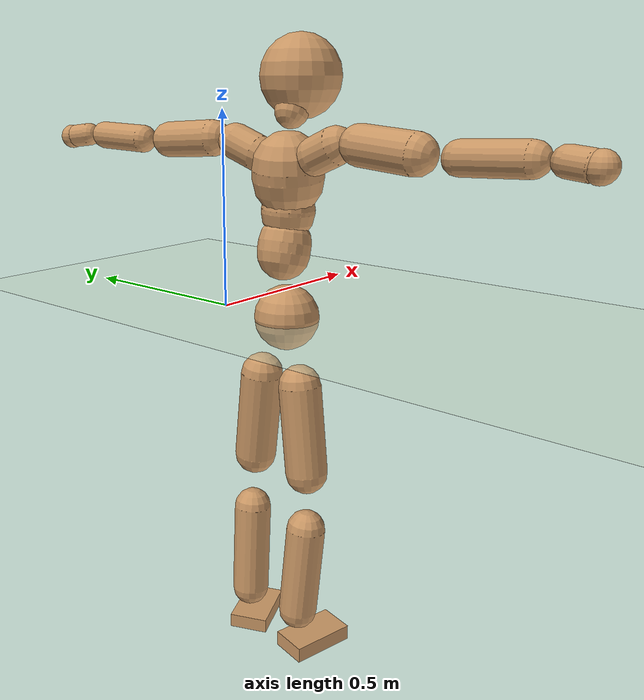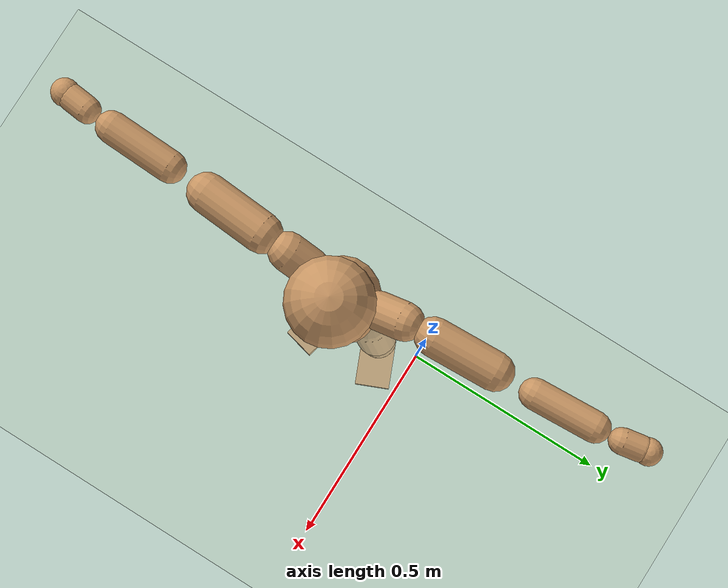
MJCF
<mujoco model="humanoid">
  <compiler coordinate="local" angle="radian"/>
  <default>
    <joint damping="0.0" armature="0.01" stiffness="0.0" limited="true"/>
    <geom conaffinity="1" condim="3" contype="7" margin="0.001" rgba="0.8 0.6 .4 1"/>
  </default>
  <asset>
    <texture type="skybox" builtin="gradient" rgb1=".4 .5 .6" rgb2="0 0 0" width="100" height="100"/>
    <texture builtin="flat" height="1278" mark="cross" markrgb="1 1 1" name="texgeom" random="0.01" rgb1="0.8 0.6 0.4" rgb2="0.8 0.6 0.4" type="cube" width="127"/>
    <texture builtin="checker" height="100" name="texplane" rgb1="0 0 0" rgb2="0.8 0.8 0.8" type="2d" width="100"/>
    <material name="MatPlane" reflectance="0.5" shininess="1" specular="1" texrepeat="60 60" texture="texplane"/>
    <material name="geom" texture="texgeom" texuniform="true"/>
  </asset>
  <worldbody>
    <light cutoff="100" diffuse="1 1 1" dir="-0 0 -1.3" directional="true" exponent="1" pos="0 0 1.3" specular=".1 .1 .1"/>
    <geom conaffinity="1" condim="3" name="floor" pos="0 0 0" rgba="0.8 0.9 0.8 1" size="100 100 .2" type="plane" material="MatPlane"/>
    <body name="Pelvis" pos="0.0001 -0.2084 0.0055">
      <freejoint name="Pelvis"/>
      <geom type="sphere" contype="1" conaffinity="1" density="500" size="0.0817" pos="0.0000 0.0000 0.0000" name="Pelvis"/>
      <body name="L_Hip" pos="-0.0262 0.0509 -0.0766">
        <joint name="L_Hip_x" type="hinge" pos="0 0 0" axis="1 0 0" stiffness="800" damping="80" armature="0.02" range="-180.0000 180.0000"/>
        <joint name="L_Hip_y" type="hinge" pos="0 0 0" axis="0 1 0" stiffness="800" damping="80" armature="0.02" range="-180.0000 180.0000"/>
        <joint name="L_Hip_z" type="hinge" pos="0 0 0" axis="0 0 1" stiffness="800" damping="80" armature="0.02" range="-180.0000 180.0000"/>
        <geom type="capsule" contype="1" conaffinity="1" density="500" fromto="0.0011 0.0093 -0.0781 0.0044 0.0372 -0.3126" size="0.0542" name="L_Hip"/>
        <body name="L_Knee" pos="0.0055 0.0464 -0.3907">
          <joint name="L_Knee_x" type="hinge" pos="0 0 0" axis="1 0 0" stiffness="800" damping="80" armature="0.02" range="-180.0000 180.0000"/>
          <joint name="L_Knee_y" type="hinge" pos="0 0 0" axis="0 1 0" stiffness="800" damping="80" armature="0.02" range="-180.0000 180.0000"/>
          <joint name="L_Knee_z" type="hinge" pos="0 0 0" axis="0 0 1" stiffness="800" damping="80" armature="0.02" range="-180.0000 180.0000"/>
          <geom type="capsule" contype="1" conaffinity="1" density="500" fromto="-0.0066 -0.0023 -0.0811 -0.0263 -0.0091 -0.3244" size="0.0491" name="L_Knee"/>
          <body name="L_Ankle" pos="-0.0329 -0.0114 -0.4055">
            <joint name="L_Ankle_x" type="hinge" pos="0 0 0" axis="1 0 0" stiffness="800" damping="80" armature="0.02" range="-180.0000 180.0000"/>
            <joint name="L_Ankle_y" type="hinge" pos="0 0 0" axis="0 1 0" stiffness="800" damping="80" armature="0.02" range="-180.0000 180.0000"/>
            <joint name="L_Ankle_z" type="hinge" pos="0 0 0" axis="0 0 1" stiffness="800" damping="80" armature="0.02" range="-180.0000 180.0000"/>
            <geom type="box" contype="1" conaffinity="1" density="500" pos="0.0561 0.0240 -0.0289" size="0.0784 0.0519 0.0192" quat="0.9796 0.0000 0.0000 0.2008" name="L_Ankle"/>
            <body name="L_Toe" pos="0.1123 0.048 -0.0578">
              <joint name="L_Toe_x" type="hinge" pos="0 0 0" axis="1 0 0" stiffness="500" damping="50" armature="0.02" range="-180.0000 180.0000"/>
              <joint name="L_Toe_y" type="hinge" pos="0 0 0" axis="0 1 0" stiffness="500" damping="50" armature="0.02" range="-180.0000 180.0000"/>
              <joint name="L_Toe_z" type="hinge" pos="0 0 0" axis="0 0 1" stiffness="500" damping="50" armature="0.02" range="-180.0000 180.0000"/>
              <geom type="box" contype="1" conaffinity="1" density="500" pos="0.0000 0.0000 0.0306" size="0.001 0.0024 0.001" quat="0.9788 0.0000 0.0000 0.2049" name="L_Toe"/>
            </body>
          </body>
        </body>
      </body>
      <body name="R_Hip" pos="-0.0229 -0.0537 -0.0846">
        <joint name="R_Hip_x" type="hinge" pos="0 0 0" axis="1 0 0" stiffness="800" damping="80" armature="0.02" range="-180.0000 180.0000"/>
        <joint name="R_Hip_y" type="hinge" pos="0 0 0" axis="0 1 0" stiffness="800" damping="80" armature="0.02" range="-180.0000 180.0000"/>
        <joint name="R_Hip_z" type="hinge" pos="0 0 0" axis="0 0 1" stiffness="800" damping="80" armature="0.02" range="-180.0000 180.0000"/>
        <geom type="capsule" contype="1" conaffinity="1" density="500" fromto="-0.0013 -0.0094 -0.0764 -0.0051 -0.0374 -0.3055" size="0.0537" name="R_Hip"/>
        <body name="R_Knee" pos="-0.0064 -0.0468 -0.3818">
          <joint name="R_Knee_x" type="hinge" pos="0 0 0" axis="1 0 0" stiffness="800" damping="80" armature="0.02" range="-180.0000 180.0000"/>
          <joint name="R_Knee_y" type="hinge" pos="0 0 0" axis="0 1 0" stiffness="800" damping="80" armature="0.02" range="-180.0000 180.0000"/>
          <joint name="R_Knee_z" type="hinge" pos="0 0 0" axis="0 0 1" stiffness="800" damping="80" armature="0.02" range="-180.0000 180.0000"/>
          <geom type="capsule" contype="1" conaffinity="1" density="500" fromto="-0.0061 0.0033 -0.0797 -0.0243 0.0132 -0.3188" size="0.0501" name="R_Knee"/>
          <body name="R_Ankle" pos="-0.0304 0.0165 -0.3985">
            <joint name="R_Ankle_x" type="hinge" pos="0 0 0" axis="1 0 0" stiffness="800" damping="80" armature="0.02" range="-180.0000 180.0000"/>
            <joint name="R_Ankle_y" type="hinge" pos="0 0 0" axis="0 1 0" stiffness="800" damping="80" armature="0.02" range="-180.0000 180.0000"/>
            <joint name="R_Ankle_z" type="hinge" pos="0 0 0" axis="0 0 1" stiffness="800" damping="80" armature="0.02" range="-180.0000 180.0000"/>
            <geom type="box" contype="1" conaffinity="1" density="500" pos="0.0607 -0.0140 -0.0308" size="0.0857 0.0477 0.0209" quat="0.9936 0.0000 0.0000 -0.1133" name="R_Ankle"/>
            <body name="R_Toe" pos="0.1215 -0.0281 -0.0615">
              <joint name="R_Toe_x" type="hinge" pos="0 0 0" axis="1 0 0" stiffness="500" damping="50" armature="0.02" range="-180.0000 180.0000"/>
              <joint name="R_Toe_y" type="hinge" pos="0 0 0" axis="0 1 0" stiffness="500" damping="50" armature="0.02" range="-180.0000 180.0000"/>
              <joint name="R_Toe_z" type="hinge" pos="0 0 0" axis="0 0 1" stiffness="500" damping="50" armature="0.02" range="-180.0000 180.0000"/>
              <geom type="box" contype="1" conaffinity="1" density="500" pos="0.0000 0.0000 0.0330" size="0.0009 0.0023 0.0012" quat="0.9946 0.0000 0.0000 -0.1038" name="R_Toe"/>
            </body>
          </body>
        </body>
      </body>
      <body name="Torso" pos="-0.0191 0.0043 0.1107">
        <joint name="Torso_x" type="hinge" pos="0 0 0" axis="1 0 0" stiffness="1000" damping="100" armature="0.02" range="-180.0000 180.0000"/>
        <joint name="Torso_y" type="hinge" pos="0 0 0" axis="0 1 0" stiffness="1000" damping="100" armature="0.02" range="-180.0000 180.0000"/>
        <joint name="Torso_z" type="hinge" pos="0 0 0" axis="0 0 1" stiffness="1000" damping="100" armature="0.02" range="-180.0000 180.0000"/>
        <geom type="capsule" contype="1" conaffinity="1" density="500" fromto="0.0184 0.0020 0.0754 0.0123 0.0014 0.0503" size="0.0655" name="Torso"/>
        <body name="Spine" pos="0.0306 0.0034 0.1257">
          <joint name="Spine_x" type="hinge" pos="0 0 0" axis="1 0 0" stiffness="1000" damping="100" armature="0.02" range="-180.0000 180.0000"/>
          <joint name="Spine_y" type="hinge" pos="0 0 0" axis="0 1 0" stiffness="1000" damping="100" armature="0.02" range="-180.0000 180.0000"/>
          <joint name="Spine_z" type="hinge" pos="0 0 0" axis="0 0 1" stiffness="1000" damping="100" armature="0.02" range="-180.0000 180.0000"/>
          <geom type="capsule" contype="1" conaffinity="1" density="500" fromto="0.0003 -0.0015 0.0299 0.0002 -0.0010 0.0200" size="0.0659" name="Spine"/>
          <body name="Chest" pos="0.0004 -0.0024 0.0499">
            <joint name="Chest_x" type="hinge" pos="0 0 0" axis="1 0 0" stiffness="1000" damping="100" armature="0.02" range="-180.0000 180.0000"/>
            <joint name="Chest_y" type="hinge" pos="0 0 0" axis="0 1 0" stiffness="1000" damping="100" armature="0.02" range="-180.0000 180.0000"/>
            <joint name="Chest_z" type="hinge" pos="0 0 0" axis="0 0 1" stiffness="1000" damping="100" armature="0.02" range="-180.0000 180.0000"/>
            <geom type="capsule" contype="1" conaffinity="1" density="500" fromto="-0.0105 -0.0053 0.0776 -0.0070 -0.0035 0.0517" size="0.0867" name="Chest"/>
            <body name="Neck" pos="-0.0165 -0.0137 0.1873">
              <joint name="Neck_x" type="hinge" pos="0 0 0" axis="1 0 0" stiffness="500" damping="50" armature="0.02" range="-180.0000 180.0000"/>
              <joint name="Neck_y" type="hinge" pos="0 0 0" axis="0 1 0" stiffness="500" damping="50" armature="0.02" range="-180.0000 180.0000"/>
              <joint name="Neck_z" type="hinge" pos="0 0 0" axis="0 0 1" stiffness="500" damping="50" armature="0.02" range="-180.0000 180.0000"/>
              <geom type="capsule" contype="1" conaffinity="1" density="500" fromto="0.0104 0.0017 0.0190 0.0416 0.0068 0.0762" size="0.0404" name="Neck"/>
              <body name="Head" pos="0.052 0.0085 0.0952">
                <joint name="Head_x" type="hinge" pos="0 0 0" axis="1 0 0" stiffness="500" damping="50" armature="0.02" range="-180.0000 180.0000"/>
                <joint name="Head_y" type="hinge" pos="0 0 0" axis="0 1 0" stiffness="500" damping="50" armature="0.02" range="-180.0000 180.0000"/>
                <joint name="Head_z" type="hinge" pos="0 0 0" axis="0 0 1" stiffness="500" damping="50" armature="0.02" range="-180.0000 180.0000"/>
                <geom type="sphere" contype="1" conaffinity="1" density="500" size="0.0973" pos="0.0000 0.0000 0.0000" name="Head"/>
              </body>
            </body>
            <body name="L_Thorax" pos="-0.0172 0.0606 0.0998">
              <joint name="L_Thorax_x" type="hinge" pos="0 0 0" axis="1 0 0" stiffness="500" damping="50" armature="0.02" range="-180.0000 180.0000"/>
              <joint name="L_Thorax_y" type="hinge" pos="0 0 0" axis="0 1 0" stiffness="500" damping="50" armature="0.02" range="-180.0000 180.0000"/>
              <joint name="L_Thorax_z" type="hinge" pos="0 0 0" axis="0 0 1" stiffness="500" damping="50" armature="0.02" range="-180.0000 180.0000"/>
              <geom type="capsule" contype="1" conaffinity="1" density="500" fromto="-0.0025 0.0209 0.0083 -0.0101 0.0836 0.0332" size="0.0438" name="L_Thorax"/>
              <body name="L_Shoulder" pos="-0.0126 0.1045 0.0416">
                <joint name="L_Shoulder_x" type="hinge" pos="0 0 0" axis="1 0 0" stiffness="500" damping="50" armature="0.02" range="-720.0000 720.0000"/>
                <joint name="L_Shoulder_y" type="hinge" pos="0 0 0" axis="0 1 0" stiffness="500" damping="50" armature="0.02" range="-720.0000 720.0000"/>
                <joint name="L_Shoulder_z" type="hinge" pos="0 0 0" axis="0 0 1" stiffness="500" damping="50" armature="0.02" range="-720.0000 720.0000"/>
                <geom type="capsule" contype="1" conaffinity="1" density="500" fromto="-0.0025 0.0500 -0.0032 -0.0099 0.2000 -0.0127" size="0.0445" name="L_Shoulder"/>
                <body name="L_Elbow" pos="-0.0124 0.25 -0.0159">
                  <joint name="L_Elbow_x" type="hinge" pos="0 0 0" axis="1 0 0" stiffness="500" damping="50" armature="0.02" range="-720.0000 720.0000"/>
                  <joint name="L_Elbow_y" type="hinge" pos="0 0 0" axis="0 1 0" stiffness="500" damping="50" armature="0.02" range="-720.0000 720.0000"/>
                  <joint name="L_Elbow_z" type="hinge" pos="0 0 0" axis="0 0 1" stiffness="500" damping="50" armature="0.02" range="-720.0000 720.0000"/>
                  <geom type="capsule" contype="1" conaffinity="1" density="500" fromto="-0.0025 0.0488 0.0015 -0.0100 0.1953 0.0062" size="0.0355" name="L_Elbow"/>
                  <body name="L_Wrist" pos="-0.0125 0.2441 0.0077">
                    <joint name="L_Wrist_x" type="hinge" pos="0 0 0" axis="1 0 0" stiffness="300" damping="30" armature="0.02" range="-180.0000 180.0000"/>
                    <joint name="L_Wrist_y" type="hinge" pos="0 0 0" axis="0 1 0" stiffness="300" damping="30" armature="0.02" range="-180.0000 180.0000"/>
                    <joint name="L_Wrist_z" type="hinge" pos="0 0 0" axis="0 0 1" stiffness="300" damping="30" armature="0.02" range="-180.0000 180.0000"/>
                    <geom type="capsule" contype="1" conaffinity="1" density="500" fromto="-0.0028 0.0154 -0.0019 -0.0113 0.0615 -0.0074" size="0.03" name="L_Wrist"/>
                    <body name="L_Hand" pos="-0.0141 0.0769 -0.0093">
                      <joint name="L_Hand_x" type="hinge" pos="0 0 0" axis="1 0 0" stiffness="300" damping="30" armature="0.02" range="-180.0000 180.0000"/>
                      <joint name="L_Hand_y" type="hinge" pos="0 0 0" axis="0 1 0" stiffness="300" damping="30" armature="0.02" range="-180.0000 180.0000"/>
                      <joint name="L_Hand_z" type="hinge" pos="0 0 0" axis="0 0 1" stiffness="300" damping="30" armature="0.02" range="-180.0000 180.0000"/>
                      <geom type="sphere" contype="1" conaffinity="1" density="500" size="0.0315" pos="0.0000 0.0000 0.0000" name="L_Hand"/>
                    </body>
                  </body>
                </body>
              </body>
            </body>
            <body name="R_Thorax" pos="-0.019 -0.0734 0.1009">
              <joint name="R_Thorax_x" type="hinge" pos="0 0 0" axis="1 0 0" stiffness="500" damping="50" armature="0.02" range="-180.0000 180.0000"/>
              <joint name="R_Thorax_y" type="hinge" pos="0 0 0" axis="0 1 0" stiffness="500" damping="50" armature="0.02" range="-180.0000 180.0000"/>
              <joint name="R_Thorax_z" type="hinge" pos="0 0 0" axis="0 0 1" stiffness="500" damping="50" armature="0.02" range="-180.0000 180.0000"/>
              <geom type="capsule" contype="1" conaffinity="1" density="500" fromto="-0.0006 -0.0195 0.0085 -0.0023 -0.0779 0.0341" size="0.0448" name="R_Thorax"/>
              <body name="R_Shoulder" pos="-0.0029 -0.0974 0.0427">
                <joint name="R_Shoulder_x" type="hinge" pos="0 0 0" axis="1 0 0" stiffness="500" damping="50" armature="0.02" range="-720.0000 720.0000"/>
                <joint name="R_Shoulder_y" type="hinge" pos="0 0 0" axis="0 1 0" stiffness="500" damping="50" armature="0.02" range="-720.0000 720.0000"/>
                <joint name="R_Shoulder_z" type="hinge" pos="0 0 0" axis="0 0 1" stiffness="500" damping="50" armature="0.02" range="-720.0000 720.0000"/>
                <geom type="capsule" contype="1" conaffinity="1" density="500" fromto="-0.0039 -0.0497 -0.0036 -0.0155 -0.1987 -0.0146" size="0.0466" name="R_Shoulder"/>
                <body name="R_Elbow" pos="-0.0194 -0.2483 -0.0182">
                  <joint name="R_Elbow_x" type="hinge" pos="0 0 0" axis="1 0 0" stiffness="500" damping="50" armature="0.02" range="-720.0000 720.0000"/>
                  <joint name="R_Elbow_y" type="hinge" pos="0 0 0" axis="0 1 0" stiffness="500" damping="50" armature="0.02" range="-720.0000 720.0000"/>
                  <joint name="R_Elbow_z" type="hinge" pos="0 0 0" axis="0 0 1" stiffness="500" damping="50" armature="0.02" range="-720.0000 720.0000"/>
                  <geom type="capsule" contype="1" conaffinity="1" density="500" fromto="-0.0018 -0.0512 0.0021 -0.0071 -0.2046 0.0084" size="0.0372" name="R_Elbow"/>
                  <body name="R_Wrist" pos="-0.0088 -0.2558 0.0105">
                    <joint name="R_Wrist_x" type="hinge" pos="0 0 0" axis="1 0 0" stiffness="300" damping="30" armature="0.02" range="-180.0000 180.0000"/>
                    <joint name="R_Wrist_y" type="hinge" pos="0 0 0" axis="0 1 0" stiffness="300" damping="30" armature="0.02" range="-180.0000 180.0000"/>
                    <joint name="R_Wrist_z" type="hinge" pos="0 0 0" axis="0 0 1" stiffness="300" damping="30" armature="0.02" range="-180.0000 180.0000"/>
                    <geom type="capsule" contype="1" conaffinity="1" density="500" fromto="-0.0019 -0.0160 -0.0015 -0.0074 -0.0638 -0.0060" size="0.0311" name="R_Wrist"/>
                    <body name="R_Hand" pos="-0.0093 -0.0798 -0.0075">
                      <joint name="R_Hand_x" type="hinge" pos="0 0 0" axis="1 0 0" stiffness="300" damping="30" armature="0.02" range="-180.0000 180.0000"/>
                      <joint name="R_Hand_y" type="hinge" pos="0 0 0" axis="0 1 0" stiffness="300" damping="30" armature="0.02" range="-180.0000 180.0000"/>
                      <joint name="R_Hand_z" type="hinge" pos="0 0 0" axis="0 0 1" stiffness="300" damping="30" armature="0.02" range="-180.0000 180.0000"/>
                      <geom type="sphere" contype="1" conaffinity="1" density="500" size="0.0325" pos="0.0000 0.0000 0.0000" name="R_Hand"/>
                    </body>
                  </body>
                </body>
              </body>
            </body>
          </body>
        </body>
      </body>
    </body>
  </worldbody>
  <actuator>
    <motor name="L_Hip_x" joint="L_Hip_x" gear="500"/>
    <motor name="L_Hip_y" joint="L_Hip_y" gear="500"/>
    <motor name="L_Hip_z" joint="L_Hip_z" gear="500"/>
    <motor name="L_Knee_x" joint="L_Knee_x" gear="500"/>
    <motor name="L_Knee_y" joint="L_Knee_y" gear="500"/>
    <motor name="L_Knee_z" joint="L_Knee_z" gear="500"/>
    <motor name="L_Ankle_x" joint="L_Ankle_x" gear="500"/>
    <motor name="L_Ankle_y" joint="L_Ankle_y" gear="500"/>
    <motor name="L_Ankle_z" joint="L_Ankle_z" gear="500"/>
    <motor name="L_Toe_x" joint="L_Toe_x" gear="500"/>
    <motor name="L_Toe_y" joint="L_Toe_y" gear="500"/>
    <motor name="L_Toe_z" joint="L_Toe_z" gear="500"/>
    <motor name="R_Hip_x" joint="R_Hip_x" gear="500"/>
    <motor name="R_Hip_y" joint="R_Hip_y" gear="500"/>
    <motor name="R_Hip_z" joint="R_Hip_z" gear="500"/>
    <motor name="R_Knee_x" joint="R_Knee_x" gear="500"/>
    <motor name="R_Knee_y" joint="R_Knee_y" gear="500"/>
    <motor name="R_Knee_z" joint="R_Knee_z" gear="500"/>
    <motor name="R_Ankle_x" joint="R_Ankle_x" gear="500"/>
    <motor name="R_Ankle_y" joint="R_Ankle_y" gear="500"/>
    <motor name="R_Ankle_z" joint="R_Ankle_z" gear="500"/>
    <motor name="R_Toe_x" joint="R_Toe_x" gear="500"/>
    <motor name="R_Toe_y" joint="R_Toe_y" gear="500"/>
    <motor name="R_Toe_z" joint="R_Toe_z" gear="500"/>
    <motor name="Torso_x" joint="Torso_x" gear="500"/>
    <motor name="Torso_y" joint="Torso_y" gear="500"/>
    <motor name="Torso_z" joint="Torso_z" gear="500"/>
    <motor name="Spine_x" joint="Spine_x" gear="500"/>
    <motor name="Spine_y" joint="Spine_y" gear="500"/>
    <motor name="Spine_z" joint="Spine_z" gear="500"/>
    <motor name="Chest_x" joint="Chest_x" gear="500"/>
    <motor name="Chest_y" joint="Chest_y" gear="500"/>
    <motor name="Chest_z" joint="Chest_z" gear="500"/>
    <motor name="Neck_x" joint="Neck_x" gear="500"/>
    <motor name="Neck_y" joint="Neck_y" gear="500"/>
    <motor name="Neck_z" joint="Neck_z" gear="500"/>
    <motor name="Head_x" joint="Head_x" gear="500"/>
    <motor name="Head_y" joint="Head_y" gear="500"/>
    <motor name="Head_z" joint="Head_z" gear="500"/>
    <motor name="L_Thorax_x" joint="L_Thorax_x" gear="500"/>
    <motor name="L_Thorax_y" joint="L_Thorax_y" gear="500"/>
    <motor name="L_Thorax_z" joint="L_Thorax_z" gear="500"/>
    <motor name="L_Shoulder_x" joint="L_Shoulder_x" gear="500"/>
    <motor name="L_Shoulder_y" joint="L_Shoulder_y" gear="500"/>
    <motor name="L_Shoulder_z" joint="L_Shoulder_z" gear="500"/>
    <motor name="L_Elbow_x" joint="L_Elbow_x" gear="500"/>
    <motor name="L_Elbow_y" joint="L_Elbow_y" gear="500"/>
    <motor name="L_Elbow_z" joint="L_Elbow_z" gear="500"/>
    <motor name="L_Wrist_x" joint="L_Wrist_x" gear="500"/>
    <motor name="L_Wrist_y" joint="L_Wrist_y" gear="500"/>
    <motor name="L_Wrist_z" joint="L_Wrist_z" gear="500"/>
    <motor name="L_Hand_x" joint="L_Hand_x" gear="500"/>
    <motor name="L_Hand_y" joint="L_Hand_y" gear="500"/>
    <motor name="L_Hand_z" joint="L_Hand_z" gear="500"/>
    <motor name="R_Thorax_x" joint="R_Thorax_x" gear="500"/>
    <motor name="R_Thorax_y" joint="R_Thorax_y" gear="500"/>
    <motor name="R_Thorax_z" joint="R_Thorax_z" gear="500"/>
    <motor name="R_Shoulder_x" joint="R_Shoulder_x" gear="500"/>
    <motor name="R_Shoulder_y" joint="R_Shoulder_y" gear="500"/>
    <motor name="R_Shoulder_z" joint="R_Shoulder_z" gear="500"/>
    <motor name="R_Elbow_x" joint="R_Elbow_x" gear="500"/>
    <motor name="R_Elbow_y" joint="R_Elbow_y" gear="500"/>
    <motor name="R_Elbow_z" joint="R_Elbow_z" gear="500"/>
    <motor name="R_Wrist_x" joint="R_Wrist_x" gear="500"/>
    <motor name="R_Wrist_y" joint="R_Wrist_y" gear="500"/>
    <motor name="R_Wrist_z" joint="R_Wrist_z" gear="500"/>
    <motor name="R_Hand_x" joint="R_Hand_x" gear="500"/>
    <motor name="R_Hand_y" joint="R_Hand_y" gear="500"/>
    <motor name="R_Hand_z" joint="R_Hand_z" gear="500"/>
  </actuator>
  <contact>
    <exclude body1="Torso" body2="Chest"/>
    <exclude body1="Head" body2="Chest"/>
    <exclude body1="R_Knee" body2="R_Toe"/>
    <exclude body1="R_Knee" body2="L_Ankle"/>
    <exclude body1="R_Knee" body2="L_Toe"/>
    <exclude body1="L_Knee" body2="L_Toe"/>
    <exclude body1="L_Knee" body2="R_Ankle"/>
    <exclude body1="L_Knee" body2="R_Toe"/>
    <exclude body1="L_Shoulder" body2="Chest"/>
    <exclude body1="R_Shoulder" body2="Chest"/>
  </contact>
  <sensor/>
  <size njmax="700" nconmax="700"/>
</mujoco>
